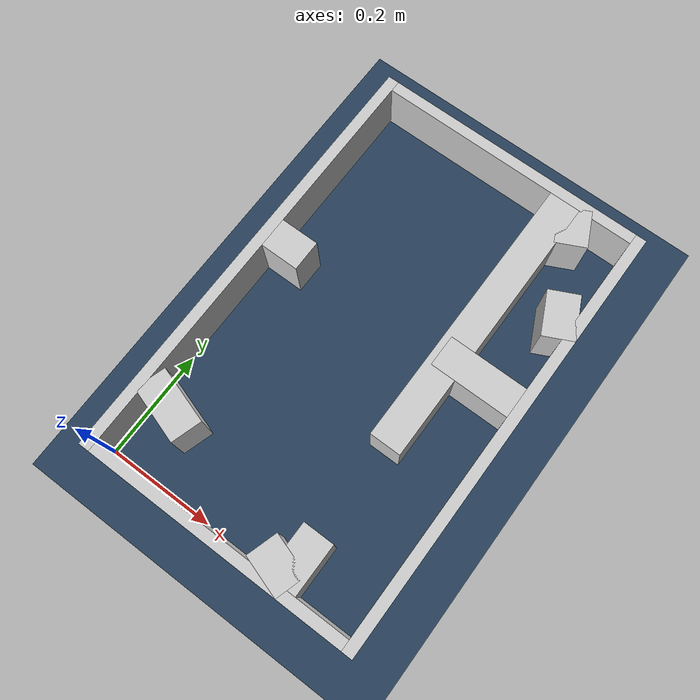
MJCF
<?xml version="1.0" ?>
<mujoco model="generated_real_template">
  <compiler angle="degree"/>
  <option timestep="0.002" integrator="implicitfast" iterations="100" cone="elliptic"/>
  <default>
    <geom density="1"/>
  </default>
  <asset>
    <texture builtin="gradient" height="3072" rgb1="0.3 0.5 0.7" rgb2="0 0 0" type="skybox" width="512"/>
    <texture builtin="checker" height="300" mark="edge" markrgb="0.8 0.8 0.8" name="groundplane" rgb1="0.2 0.3 0.4" rgb2="0.1 0.2 0.3" type="2d" width="300"/>
    <material name="groundplane" reflectance="0.2" texrepeat="5 5" texture="groundplane" texuniform="true"/>
  </asset>
  <worldbody>
    <light dir="0 0 -1" directional="true" pos="0 0 1.5"/>
    <geom name="floor" type="plane" condim="4" friction="0.5 0.005 0.001" material="groundplane" size="0 0 0.05"/>
    <body name="walls">
      <geom name="wall_boundary_left" type="box" condim="4" friction="1.0 0.005 0.0001" rgba="0.8 0.8 0.8 1" pos="-0.010000 0.387500 0.050000" euler="0 0 0.000000" size="0.010000 0.407500 0.050000"/>
      <geom name="wall_boundary_right" type="box" condim="4" friction="1.0 0.005 0.0001" rgba="0.8 0.8 0.8 1" pos="0.500000 0.387500 0.050000" euler="0 0 0.000000" size="0.010000 0.407500 0.050000"/>
      <geom name="wall_boundary_bottom" type="box" condim="4" friction="1.0 0.005 0.0001" rgba="0.8 0.8 0.8 1" pos="0.245000 -0.010000 0.050000" euler="0 0 0.000000" size="0.245000 0.010000 0.050000"/>
      <geom name="wall_boundary_top" type="box" condim="4" friction="1.0 0.005 0.0001" rgba="0.8 0.8 0.8 1" pos="0.245000 0.785000 0.050000" euler="0 0 0.000000" size="0.245000 0.010000 0.050000"/>
      <geom name="wall_inner_1_1" type="box" condim="4" friction="1.0 0.005 0.0001" rgba="0.8 0.8 0.8 1" pos="0.035899 0.437661 0.050000" euler="0 0 0.000000" size="0.035899 0.028500 0.050000"/>
      <geom name="wall_inner_1_2" type="box" condim="4" friction="1.0 0.005 0.0001" rgba="0.8 0.8 0.8 1" pos="0.417444 0.437661 0.050000" euler="0 0 0.000000" size="0.072556 0.028500 0.050000"/>
      <geom name="wall_inner_2_1" type="box" condim="4" friction="1.0 0.005 0.0001" rgba="0.8 0.8 0.8 1" pos="0.339805 0.018823 0.050000" euler="0 0 162.572077" size="0.038832 0.028500 0.050000"/>
      <geom name="wall_inner_2_2" type="box" condim="4" friction="1.0 0.005 0.0001" rgba="0.8 0.8 0.8 1" pos="0.051242 0.109408 0.050000" euler="0 0 162.572077" size="0.053707 0.028500 0.050000"/>
      <geom name="wall_inner_3_1" type="box" condim="4" friction="1.0 0.005 0.0001" rgba="0.8 0.8 0.8 1" pos="0.361961 0.047104 0.050000" euler="0 0 90.000000" size="0.047104 0.028500 0.050000"/>
      <geom name="wall_inner_3_2" type="box" condim="4" friction="1.0 0.005 0.0001" rgba="0.8 0.8 0.8 1" pos="0.361961 0.518289 0.050000" euler="0 0 90.000000" size="0.256711 0.028500 0.050000"/>
      <geom name="wall_inner_4_1" type="box" condim="4" friction="1.0 0.005 0.0001" rgba="0.8 0.8 0.8 1" pos="0.397742 0.744683 0.050000" euler="0 0 -64.251068" size="0.033659 0.028500 0.050000"/>
      <geom name="wall_inner_4_2" type="box" condim="4" friction="1.0 0.005 0.0001" rgba="0.8 0.8 0.8 1" pos="0.466643 0.601829 0.050000" euler="0 0 -64.251068" size="0.040711 0.028500 0.050000"/>
    </body>
  </worldbody>
</mujoco>
